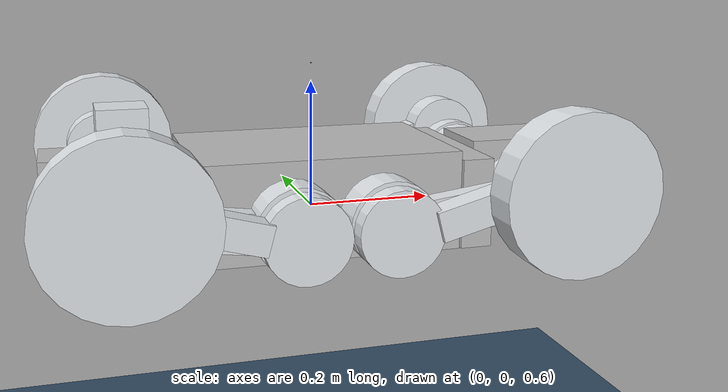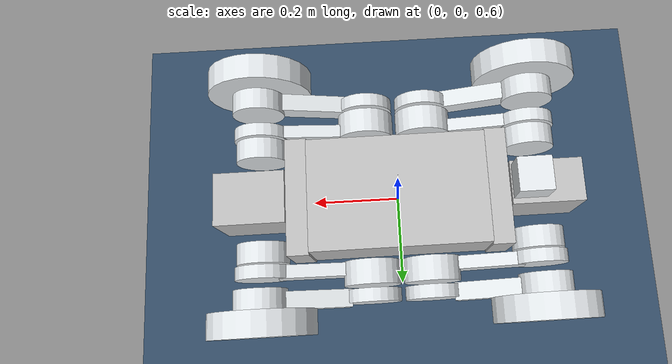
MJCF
<?xml version='1.0' encoding='utf-8'?>
<mujoco model="thunder_v3_mujoco">
  <compiler angle="radian" autolimits="true" />
  <option timestep="0.001" iterations="50" solver="PGS" gravity="0 0 -9.81">
    <flag frictionloss="enable" sensor="enable" />
  </option>
  <worldbody>
    <geom name="ground" type="plane" size="0 0 1" pos="0 0 0" quat="1 0 0 0" condim="1" conaffinity="15" rgba="0.2 0.3 0.4 1" />
    <body name="base_link" pos="0 0 0.55">
      <site name="imu" size="0.01" pos="0 0 0" quat="1 0 0 0" />
      <inertial pos="-0.000838877 0.00711738 0.0765547" quat="0.54586 0.445843 0.55522 0.441579" mass="18.8369" diaginertia="0.647112 0.602654 0.248431" />
      <joint name="floating_base_joint" type="free" />
      <geom size="0.205 0.129 0.0775" pos="0 0.00124 0.07541" type="box" rgba="0.752941 0.752941 0.752941 1" />
      <geom size="0.025 0.135 0.07" pos="0.23 0 0.07" type="box" rgba="0.752941 0.752941 0.752941 1" />
      <geom size="0.025 0.135 0.07" pos="-0.23 0 0.07" type="box" rgba="0.752941 0.752941 0.752941 1" />
      <geom size="0.08 0.06 0.072" pos="0.335 0 0.08" type="box" rgba="0.752941 0.752941 0.752941 1" />
      <geom size="0.0825 0.05 0.075" pos="-0.3375 0 0.08" type="box" rgba="0.752941 0.752941 0.752941 1" />
      <geom size="0.0384 0.0384 0.04005" pos="-0.29638 -0.0012453 0.1849" quat="-3.67321e-06 0 0 1" type="box" rgba="0.898039 0.917647 0.929412 1" />
      <camera name="front_camera" pos="0.35 0 0.15" xyaxes="0 -1 0 0 0 1" fovy="60" />
      <body name="lidar_link" pos="0 0 0.28">
        <site name="lidar_site" pos="0 0 0" size="0.001" />
      </body>
      <body name="FR_hip" pos="0.2395 -0.065 0.08065">
        <inertial pos="0.06964 -0.04836 0.00073" quat="0.625515 0.616922 0.338061 0.337421" mass="1.78126" diaginertia="0.0173549 0.0163714 0.00282375" />
        <joint name="FR_hip_joint" pos="0 0 0" axis="-1 0 0" range="-0.4 0.4" actuatorfrcrange="-120 120" />
        <geom size="0.06 0.024" pos="0.07752 -0.05564 0.00083" quat="0.707105 0.707108 0 0" type="cylinder" rgba="0.898039 0.917647 0.929412 1" />
        <body name="FR_thigh" pos="0.078 -0.0795 0">
          <inertial pos="-0.19519 -0.02855 -0.01131" quat="0.4815 0.451865 0.516848 0.544833" mass="2.40982" diaginertia="0.12237 0.120515 0.00342445" />
          <joint name="FR_thigh_joint" pos="0 0 0" axis="0 1 0" range="-3.14 0" actuatorfrcrange="-120 120" />
          <geom size="0.064 0.015" pos="0 -0.0195 0" quat="0.707105 0.707108 0 0" type="cylinder" rgba="0.898039 0.917647 0.929412 1" />
          <geom size="0.09 0.015 0.03" pos="-0.125 -0.02059 -0.01001" quat="0.997888 0 -0.0649542 0" type="box" rgba="0.898039 0.917647 0.929412 1" />
          <geom size="0.0655 0.028" pos="-0.2485 -0.032 -0.0135" quat="0.707105 0.707108 0 0" type="cylinder" rgba="0.898039 0.917647 0.929412 1" />
          <body name="FR_calf" pos="-0.24954 -0.057 -0.01515">
            <inertial pos="0.17379 -0.02895 0.03734" quat="0.576479 0.481443 0.405075 0.521344" mass="1.89384" diaginertia="0.0857584 0.084918 0.00239355" />
            <joint name="FR_calf_joint" pos="0 0 0" axis="0 1 0" range="0 3.14" actuatorfrcrange="-120 120" />
            <geom size="0.0635 0.015" pos="0 -0.02653 0" quat="0.707105 0.707108 0 0" type="cylinder" rgba="0.898039 0.917647 0.929412 1" />
            <geom size="0.09 0.02 0.0225" pos="0.14 -0.02903 0.0305" quat="0.991445 0 -0.130526 0" type="box" rgba="0.898039 0.917647 0.929412 1" />
            <geom size="0.06 0.0275" pos="0.249 -0.02903 0.0531" quat="0.707105 0.707108 0 0" type="cylinder" rgba="0.898039 0.917647 0.929412 1" />
            <body name="FR_foot" pos="0.24443 -0.061 0.0525">
              <inertial pos="0 -0.01385 0" quat="0.707107 0 0 0.707107" mass="1.40377" diaginertia="0.00121 0.00092 0.00092" />
              <joint name="FR_foot_joint" pos="0 0 0" axis="0 1 0" limited="false" actuatorfrcrange="-60 60" />
              <geom size="0.12 0.028085" pos="0 -0.01631 0" quat="0.707105 0.707108 0 0" type="cylinder" rgba="0.898039 0.917647 0.929412 1" />
            </body>
          </body>
        </body>
      </body>
      <body name="FL_hip" pos="0.2395 0.065 0.08065">
        <inertial pos="0.06964 0.04836 -0.00073" quat="0.338061 0.337421 0.625515 0.616922" mass="1.78126" diaginertia="0.0173549 0.0163714 0.00282375" />
        <joint name="FL_hip_joint" pos="0 0 0" axis="-1 0 0" range="-0.4 0.4" actuatorfrcrange="-120 120" />
        <geom size="0.06 0.024" pos="0.07752 0.05564 0.00083" quat="0.707105 0.707108 0 0" type="cylinder" rgba="0.898039 0.917647 0.929412 1" />
        <body name="FL_thigh" pos="0.078 0.0795 0">
          <inertial pos="-0.19484 0.02855 -0.01176" quat="0.542469 0.519007 0.447927 0.48551" mass="2.40982" diaginertia="0.121966 0.120079 0.00347509" />
          <joint name="FL_thigh_joint" pos="0 0 0" axis="0 -1 0" range="0 3.14" actuatorfrcrange="-120 120" />
          <geom size="0.064 0.015" pos="0 0.0195 0" quat="0.707105 0.707108 0 0" type="cylinder" rgba="0.898039 0.917647 0.929412 1" />
          <geom size="0.09 0.015 0.03" pos="-0.125 0.02059 -0.01001" quat="0.997888 0 -0.0649542 0" type="box" rgba="0.898039 0.917647 0.929412 1" />
          <geom size="0.0655 0.028" pos="-0.2485 0.032 -0.0135" quat="0.707105 0.707108 0 0" type="cylinder" rgba="0.898039 0.917647 0.929412 1" />
          <body name="FL_calf" pos="-0.24954 0.057 -0.01515">
            <inertial pos="0.17384 0.02895 0.03735" quat="0.52142 0.405052 0.481468 0.576405" mass="1.89384" diaginertia="0.0858075 0.0849699 0.00239256" />
            <joint name="FL_calf_joint" pos="0 0 0" axis="0 -1 0" range="-3.14 0" actuatorfrcrange="-120 120" />
            <geom size="0.0635 0.015" pos="0 0.02653 0" quat="0.707105 0.707108 0 0" type="cylinder" rgba="0.898039 0.917647 0.929412 1" />
            <geom size="0.09 0.02 0.0225" pos="0.14 0.02903 0.0305" quat="0.991445 0 -0.130526 0" type="box" rgba="0.898039 0.917647 0.929412 1" />
            <geom size="0.06 0.0275" pos="0.249 0.02903 0.0531" quat="0.707105 0.707108 0 0" type="cylinder" rgba="0.898039 0.917647 0.929412 1" />
            <body name="FL_foot" pos="0.24443 0.061 0.0525">
              <inertial pos="0 0.01385 0" quat="0.707107 0 0 0.707107" mass="1.40377" diaginertia="0.00121 0.00092 0.00092" />
              <joint name="FL_foot_joint" pos="0 0 0" axis="0 -1 0" limited="false" actuatorfrcrange="-60 60" />
              <geom size="0.12 0.028085" pos="0 0.01631 0" quat="0.707105 0.707108 0 0" type="cylinder" rgba="0.898039 0.917647 0.929412 1" />
            </body>
          </body>
        </body>
      </body>
      <body name="RR_hip" pos="-0.2395 -0.065 0.08065">
        <inertial pos="-0.06964 -0.04836 -0.00073" quat="0.337421 0.338061 0.616922 0.625515" mass="1.78126" diaginertia="0.0173549 0.0163714 0.00282375" />
        <joint name="RR_hip_joint" pos="0 0 0" axis="1 0 0" range="-0.4 0.4" actuatorfrcrange="-120 120" />
        <geom size="0.06 0.024" pos="-0.07752 -0.05564 0.00083" quat="0.707105 0.707108 0 0" type="cylinder" rgba="0.898039 0.917647 0.929412 1" />
        <body name="RR_thigh" pos="-0.078 -0.0795 0">
          <inertial pos="0.19483 -0.02855 -0.01178" quat="0.518661 0.542837 0.485186 0.448234" mass="2.40982" diaginertia="0.121966 0.120081 0.00347271" />
          <joint name="RR_thigh_joint" pos="0 0 0" axis="0 1 0" range="0 3.14" actuatorfrcrange="-120 120" />
          <geom size="0.064 0.015" pos="0 -0.0195 0" quat="0.707105 0.707108 0 0" type="cylinder" rgba="0.898039 0.917647 0.929412 1" />
          <geom size="0.09 0.015 0.03" pos="0.125 -0.02059 -0.01001" quat="0.997888 0 0.0649542 0" type="box" rgba="0.898039 0.917647 0.929412 1" />
          <geom size="0.0655 0.028" pos="0.2485 -0.032 -0.0135" quat="0.707105 0.707108 0 0" type="cylinder" rgba="0.898039 0.917647 0.929412 1" />
          <body name="RR_calf" pos="0.24954 -0.057 -0.01515">
            <inertial pos="-0.17384 -0.02895 0.03735" quat="0.405052 0.52142 0.576405 0.481468" mass="1.89384" diaginertia="0.0858075 0.0849699 0.00239256" />
            <joint name="RR_calf_joint" pos="0 0 0" axis="0 1 0" range="-3.14 3.14" actuatorfrcrange="-120 120" />
            <geom size="0.0635 0.015" pos="0 -0.02653 0" quat="0.707105 0.707108 0 0" type="cylinder" rgba="0.898039 0.917647 0.929412 1" />
            <geom size="0.09 0.02 0.0225" pos="-0.14 -0.02903 0.0305" quat="0.991445 0 0.130526 0" type="box" rgba="0.898039 0.917647 0.929412 1" />
            <geom size="0.06 0.0275" pos="-0.249 -0.02903 0.0531" quat="0.707105 0.707108 0 0" type="cylinder" rgba="0.898039 0.917647 0.929412 1" />
            <body name="RR_foot" pos="-0.24443 -0.061 0.0525">
              <inertial pos="0 -0.01385 0" quat="0.707107 0 0 0.707107" mass="1.40377" diaginertia="0.00121 0.00092 0.00092" />
              <joint name="RR_foot_joint" pos="0 0 0" axis="0 1 0" limited="false" actuatorfrcrange="-60 60" />
              <geom size="0.12 0.028085" pos="0 -0.01631 0" quat="0.707105 0.707108 0 0" type="cylinder" rgba="0.898039 0.917647 0.929412 1" />
            </body>
          </body>
        </body>
      </body>
      <body name="RL_hip" pos="-0.2395 0.065 0.08065">
        <inertial pos="-0.0696 0.04836 0.00075" quat="0.616925 0.625523 0.337421 0.338041" mass="1.78126" diaginertia="0.0173387 0.0163514 0.00282991" />
        <joint name="RL_hip_joint" pos="0 0 0" axis="1 0 0" range="-0.4 0.4" actuatorfrcrange="-120 120" />
        <geom size="0.06 0.024" pos="-0.07752 0.05564 0.00083" quat="0.707105 0.707108 0 0" type="cylinder" rgba="0.898039 0.917647 0.929412 1" />
        <body name="RL_thigh" pos="-0.078 0.0795 0">
          <inertial pos="0.19519 0.02855 -0.01131" quat="0.451865 0.4815 0.544833 0.516848" mass="2.40982" diaginertia="0.12237 0.120515 0.00342445" />
          <joint name="RL_thigh_joint" pos="0 0 0" axis="0 -1 0" range="-3.14 0" actuatorfrcrange="-120 120" />
          <geom size="0.064 0.015" pos="0 0.0195 0" quat="0.707105 0.707108 0 0" type="cylinder" rgba="0.898039 0.917647 0.929412 1" />
          <geom size="0.09 0.015 0.03" pos="0.125 0.02059 -0.01001" quat="0.997888 0 0.0649542 0" type="box" rgba="0.898039 0.917647 0.929412 1" />
          <geom size="0.0655 0.028" pos="0.2485 0.032 -0.0135" quat="0.707105 0.707108 0 0" type="cylinder" rgba="0.898039 0.917647 0.929412 1" />
          <body name="RL_calf" pos="0.24954 0.057 -0.01515">
            <inertial pos="-0.17385 0.02895 0.03733" quat="0.478974 0.57966 0.517737 0.408077" mass="1.89384" diaginertia="0.0858096 0.0849658 0.00239458" />
            <joint name="RL_calf_joint" pos="0 0 0" axis="0 -1 0" range="-3.14 3.14" actuatorfrcrange="-120 120" />
            <geom size="0.0635 0.015" pos="0 0.02653 0" quat="0.707105 0.707108 0 0" type="cylinder" rgba="0.898039 0.917647 0.929412 1" />
            <geom size="0.09 0.02 0.0225" pos="-0.14 0.02903 0.0305" quat="0.991445 0 0.130526 0" type="box" rgba="0.898039 0.917647 0.929412 1" />
            <geom size="0.06 0.0275" pos="-0.249 0.02903 0.0531" quat="0.707105 0.707108 0 0" type="cylinder" rgba="0.898039 0.917647 0.929412 1" />
            <body name="RL_foot" pos="-0.24443 0.061 0.0525">
              <inertial pos="0 0.01385 0" quat="0.707107 0 0 0.707107" mass="1.40377" diaginertia="0.00121 0.00092 0.00092" />
              <joint name="RL_foot_joint" pos="0 0 0" axis="0 -1 0" limited="false" actuatorfrcrange="-60 60" />
              <geom size="0.12 0.028085" pos="0 0.01631 0" quat="0.707105 0.707108 0 0" type="cylinder" rgba="0.898039 0.917647 0.929412 1" />
            </body>
          </body>
        </body>
      </body>
    </body>
  </worldbody>
  <actuator>
    <position name="FR_hip" joint="FR_hip_joint" kp="65" kv="5" ctrlrange="-1.0 1.0" forcerange="-120 120" />
    <position name="FR_thigh" joint="FR_thigh_joint" kp="95" kv="5" ctrlrange="-3.5 3.5" forcerange="-120 120" />
    <position name="FR_calf" joint="FR_calf_joint" kp="120" kv="5" ctrlrange="-3.5 3.5" forcerange="-120 120" />
    <position name="FL_hip" joint="FL_hip_joint" kp="65" kv="5" ctrlrange="-1.0 1.0" forcerange="-120 120" />
    <position name="FL_thigh" joint="FL_thigh_joint" kp="95" kv="5" ctrlrange="-3.5 3.5" forcerange="-120 120" />
    <position name="FL_calf" joint="FL_calf_joint" kp="120" kv="5" ctrlrange="-3.5 3.5" forcerange="-120 120" />
    <position name="RR_hip" joint="RR_hip_joint" kp="65" kv="5" ctrlrange="-1.0 1.0" forcerange="-120 120" />
    <position name="RR_thigh" joint="RR_thigh_joint" kp="95" kv="5" ctrlrange="-3.5 3.5" forcerange="-120 120" />
    <position name="RR_calf" joint="RR_calf_joint" kp="120" kv="5" ctrlrange="-3.5 3.5" forcerange="-120 120" />
    <position name="RL_hip" joint="RL_hip_joint" kp="65" kv="5" ctrlrange="-1.0 1.0" forcerange="-120 120" />
    <position name="RL_thigh" joint="RL_thigh_joint" kp="95" kv="5" ctrlrange="-3.5 3.5" forcerange="-120 120" />
    <position name="RL_calf" joint="RL_calf_joint" kp="120" kv="5" ctrlrange="-3.5 3.5" forcerange="-120 120" />
    <position name="FR_foot" joint="FR_foot_joint" kp="30" kv="2" ctrlrange="-1.0 1.0" forcerange="-60 60" />
    <position name="FL_foot" joint="FL_foot_joint" kp="30" kv="2" ctrlrange="-1.0 1.0" forcerange="-60 60" />
    <position name="RR_foot" joint="RR_foot_joint" kp="30" kv="2" ctrlrange="-1.0 1.0" forcerange="-60 60" />
    <position name="RL_foot" joint="RL_foot_joint" kp="30" kv="2" ctrlrange="-1.0 1.0" forcerange="-60 60" />
  </actuator>
  <sensor>
    <framequat name="orientation" objtype="site" noise="0.001" objname="imu" />
    <framepos name="position" objtype="site" noise="0.001" objname="imu" />
    <gyro name="angular-velocity" site="imu" noise="0.005" cutoff="34.9" />
    <velocimeter name="linear-velocity" site="imu" noise="0.001" cutoff="30" />
    <accelerometer name="linear-acceleration" site="imu" noise="0.005" cutoff="157" />
    <magnetometer name="magnetometer" site="imu" />
  </sensor>
</mujoco>
